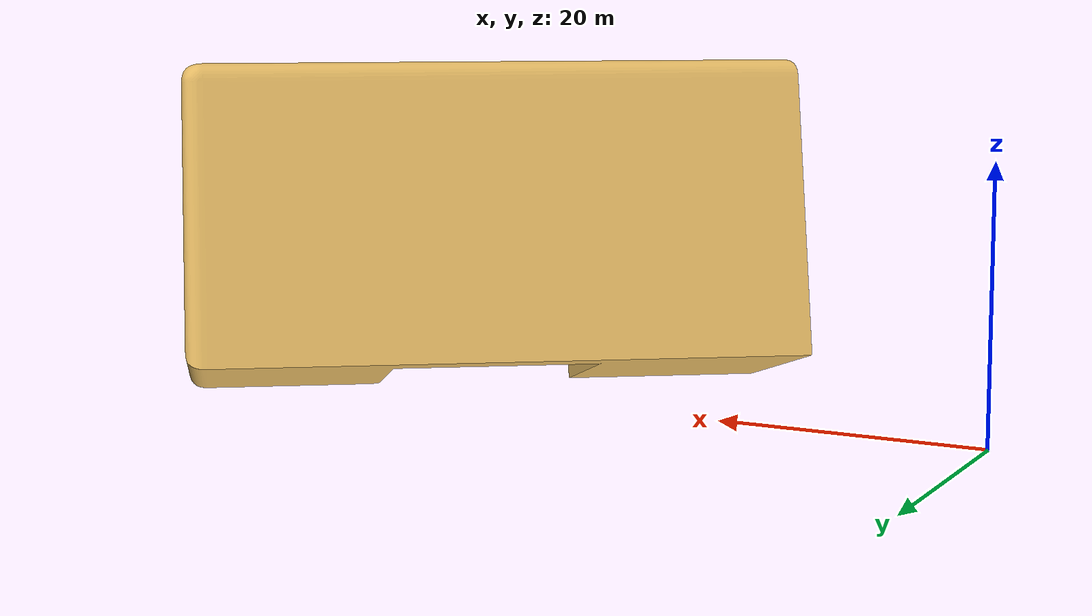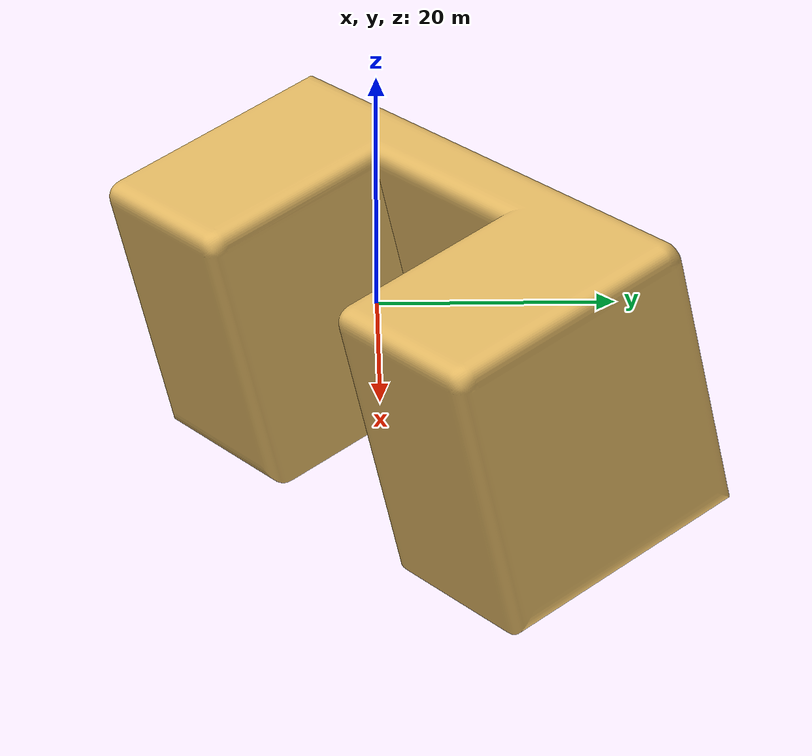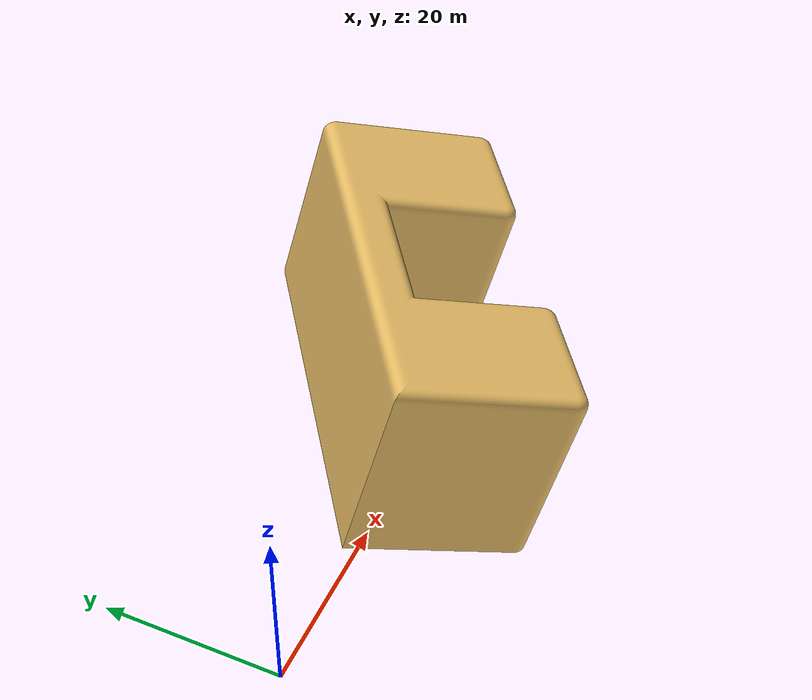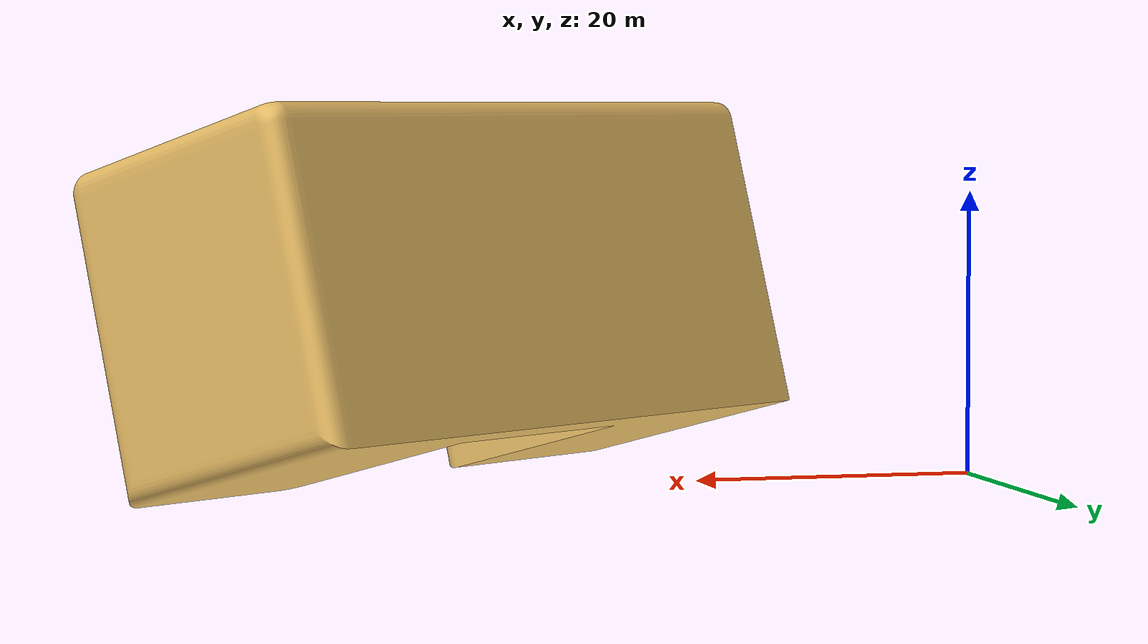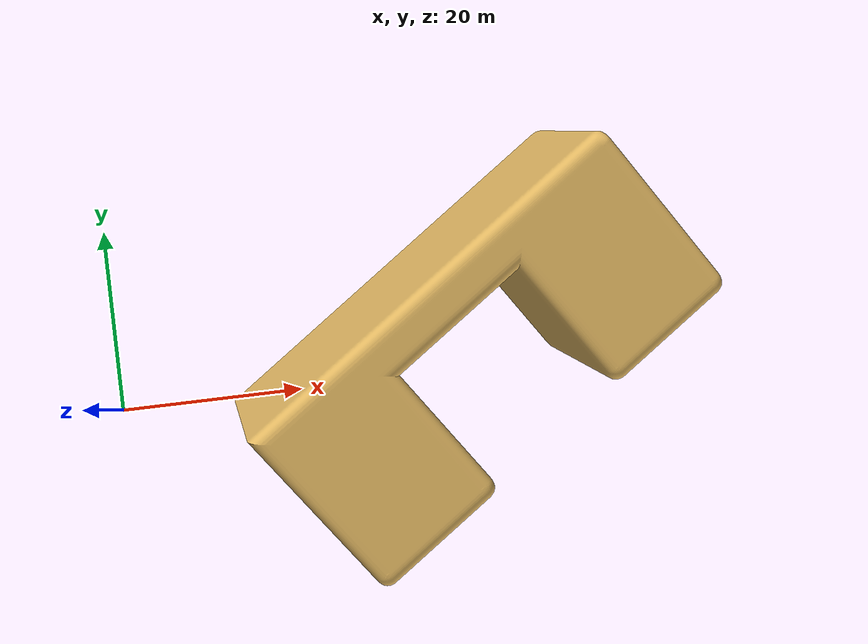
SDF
<?xml version='1.0'?>
<sdf version='1.10'>

<model name ='Concave Obstacle'>
<link name='base_link'>
        <gravity>true</gravity>
        <must_be_base_link>true</must_be_base_link>
        <pose>10 0 4 0 0 0</pose>
        <inertial>
          <mass>3.9660000000000002</mass>
          <pose>0 0 0 0 0 0</pose>
          <inertia>
            <ixx>1</ixx>
            <ixy>0</ixy>
            <ixz>0</ixz>
            <iyy>1</iyy>
            <iyz>0</iyz>
            <izz>1</izz>
          </inertia>
        </inertial>
        <collision name='base_link_collision'>
          <pose>0 0 0 0 0 0</pose>
          <geometry>
            <mesh>
              <uri>/home/arash/ros2_ws/src/surface/models/concave obstacle/meshes/Unnamed-concave_obstacle.dae</uri>

            </mesh>
          </geometry>
          <surface>
            <friction>
              <ode>
                <mu>1.05</mu>
                <mu2>1.05</mu2>
              </ode>
            </friction>
          </surface>
        </collision>
        <visual name='base_link_visual'>
          <geometry>
            <mesh>
              <uri>file:////home/arash/ros2_ws/src/surface/models/concave obstacle/meshes/Unnamed-concave_obstacle.dae</uri>
               <scale>5 5 5</scale>
            </mesh>
          </geometry>
        </visual>
        <enable_wind>false</enable_wind>
        <inertia>
          <Ixx>0.593977313</Ixx>
          <Ixy>−0.017091614</Ixy>
          <Ixz>−0.02798984</Ixz>
          <Iyx>−0.017091614</Iyx>
          <Iyy>1.444791889</Iyy>
          <Iyz>−0.007921778</Iyz>
          <Izx>−0.02798984</Izx>
          <Izy>−0.007921778</Izy>
          <Izz>0.928181238</Izz>
        </inertia>
      </link>

</model>
</sdf>
